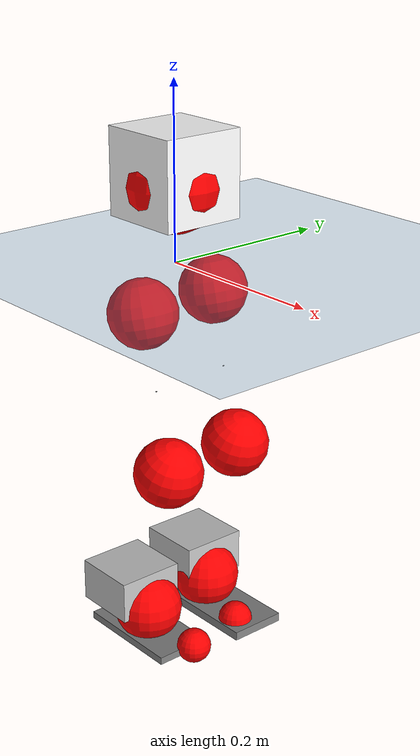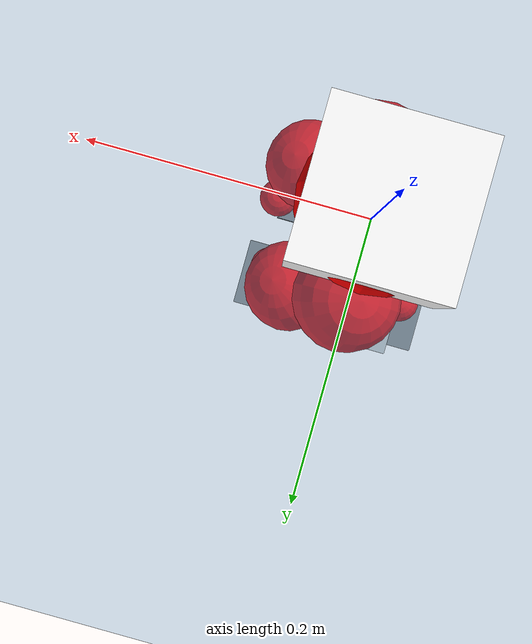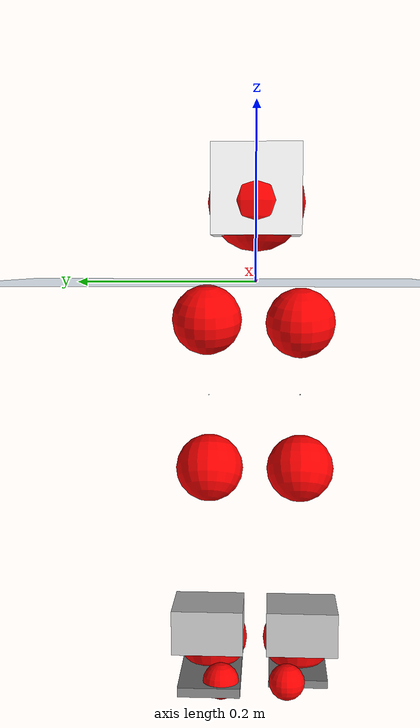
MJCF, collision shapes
<mujoco model="pi_12dof_release_v1">
  <compiler angle="radian" assetdir="assets" balanceinertia="true" inertiafromgeom="false"/>

  <option timestep="0.005" density="1.2" viscosity="2e-05"/>

  <size nkey="1"/>

  <visual>
    <quality shadowsize="8192"/>
    <map shadowclip="0.5"/>
  </visual>

  <default>
    <default class="/">
      <joint armature="0.01" damping="0.01" frictionloss="0.01"/>
      <geom contype="0" conaffinity="0" group="1" solref="-1000 -80"/>
      <site size="0.01 0.005 0.005" group="5"/>
      <general forcelimited="true" biastype="affine" gainprm="20" biasprm="0 -20 -0.5"/>
      <default class="foot">
        <geom size="0.0845 0.036 0.005" type="box" condim="6" group="4" priority="1" friction="0.9 0.2 0.2" solimp="0.015 1 0.005"/>
      </default>
      <default class="reward_collision_sphere">
        <geom group="5" rgba="1 0 0 1"/>
      </default>
    </default>
  </default>

  <asset>
    <texture type="skybox" colorspace="auto" name="//unnamed_texture_0" builtin="gradient" rgb1="0.95 0.95 0.95" rgb2="0.95 0.95 0.95" width="100" height="600"/>
    <texture type="2d" colorspace="auto" name="texplane" builtin="checker" rgb1="0.345 0.575 0.748" rgb2="0.345 0.575 0.748" markrgb="1 1 1" width="512" height="512"/>
    <material name="MatPlane" class="/" texture="texplane" texuniform="true" texrepeat="2 2" specular="0.9"/>
    <mesh name="baselink_1" class="/" file="baselink_1.STL"/>
    <mesh name="r_hip_pitch_link" class="/" file="r_hip_pitch_link.STL"/>
    <mesh name="r_hip_roll_link" class="/" file="r_hip_roll_link.STL"/>
    <mesh name="r_thigh_link" class="/" file="r_thigh_link.STL"/>
    <mesh name="r_calf_link" class="/" file="r_calf_link.STL"/>
    <mesh name="r_ankle_pitch_link" class="/" file="r_ankle_pitch_link.STL"/>
    <mesh name="r_ankle_roll_link" class="/" file="r_ankle_roll_link.STL"/>
    <mesh name="l_hip_pitch_link" class="/" file="l_hip_pitch_link.STL"/>
    <mesh name="l_hip_roll_link" class="/" file="l_hip_roll_link.STL"/>
    <mesh name="l_thigh_link" class="/" file="l_thigh_link.STL"/>
    <mesh name="l_calf_link" class="/" file="l_calf_link.STL"/>
    <mesh name="l_ankle_pitch_link" class="/" file="l_ankle_pitch_link.STL"/>
    <mesh name="l_ankle_roll_link" class="/" file="l_ankle_roll_link.STL"/>
  </asset>

  <worldbody>
    <geom name="floor" class="/" size="100 100 0.125" type="plane" group="0" material="MatPlane"/>
    <light name="toplight_shadow" class="/" pos="0 0 5" dir="0.0990148 0.0990148 -0.990148" type="directional" ambient="0.04 0.04 0.04" diffuse="0.55 0.55 0.55" specular="0.12 0.12 0.12"/>
    <light name="toplight_fill" class="/" pos="0 0 5" dir="0.0990148 0.0990148 -0.990148" type="directional" castshadow="false" ambient="0.04 0.04 0.04" diffuse="0.3 0.3 0.3" specular="0.08 0.08 0.08"/>
    <body name="trunk" pos="0.000159047 -0.000375128 -0.00155342" quat="1 -0.000150187 -0.000234222 4.4938e-05">
      <inertial pos="0.00171178 -1.36307e-05 0.0542194" quat="0.697281 -0.00224006 0.0037684 0.716785" mass="2.08383" diaginertia="0.0129202 0.000828165 0.0138246"/>
      <joint name="//unnamed_joint_0" type="free"/>
      <geom name="//unnamed_geom_1" class="/" type="mesh" density="0" rgba="1 1 1 1" mesh="baselink_1"/>
      <geom name="//unnamed_geom_2" class="/" size="0.049084 0.049084 0.049084" pos="0 0 0.101877" type="box" rgba="1 1 1 1"/>
      <geom name="//unnamed_geom_3" class="reward_collision_sphere" size="0.0539924" pos="0 0 0.089142"/>
      <site name="imu" class="/" pos="0.00945562 -0.00513264 -0.000946982" size="0.0098168"/>
      <camera name="track" class="/" pos="0 -1.24093 0" quat="0.707107 0.707107 0 0" mode="trackcom"/>
      <camera name="ego_camera" class="/" pos="0.0788337 0 0.229222" quat="-0.5 -0.5 0.5 0.5"/>
      <body name="r_hip_pitch_link" pos="0.003265 -0.0160881 -0.0428926" quat="0.992253 -0.00020901 -0.124226 -0.00111489">
        <inertial pos="0.000636151 -0.0375629 0.000386941" quat="-0.0258571 0.707808 -0.0203115 0.70564" mass="0.356038" diaginertia="0.000142204 9.20067e-06 0.000290158"/>
        <joint name="r_hip_pitch_joint" class="/" pos="0 0 0" axis="0.0102422 -0.999945 -0.00205773" range="-1.74558 1.26828" armature="0.00848002" damping="0.0175504" frictionloss="0.00849415"/>
        <geom name="//unnamed_geom_4" class="/" type="mesh" density="0" rgba="0.75294 0.75294 0.75294 1" mesh="r_hip_pitch_link"/>
        <geom name="//unnamed_geom_5" class="/" size="0.00049084 0.00049084 0.00049084" type="box" rgba="0.75294 0.75294 0.75294 1"/>
        <body name="r_hip_roll_link" pos="0.00200685 -0.0338066 -0.00202317" quat="1 -8.92703e-05 -0.000243234 5.09713e-05">
          <inertial pos="0.00157279 -0.000446065 -0.0781817" quat="0.698824 -0.0760767 -0.0894018 0.705595" mass="0.375666" diaginertia="0.000430496 2.55312e-05 0.000420171"/>
          <joint name="r_hip_roll_joint" class="/" pos="0 0 0" axis="-0.999956 0.00155941 0.00921897" range="-0.111926 0.54826" armature="0.00831794" damping="0.00251987" frictionloss="0.010428"/>
          <geom name="//unnamed_geom_6" class="/" type="mesh" density="0" rgba="0.75294 0.75294 0.75294 1" mesh="r_hip_roll_link"/>
          <geom name="//unnamed_geom_7" class="/" size="0.00049084 0.00049084 0.00049084" type="box" rgba="0.75294 0.75294 0.75294 1"/>
          <geom name="//unnamed_geom_8" class="reward_collision_sphere" size="0.0392672"/>
          <body name="r_thigh_link" pos="0.000862923 -0.000608548 -0.0865403" quat="1 -5.21831e-05 3.21756e-05 -0.000180592">
            <inertial pos="-0.00109624 -0.000515426 -0.0629462" quat="0.744684 0.667406 -0.00354372 0.00146931" mass="0.104384" diaginertia="0.00015498 8.71889e-06 0.000183431"/>
            <joint name="r_thigh_joint" class="/" pos="0 0 0" axis="-0.0107486 0.00302758 -0.999938" stiffness="0.00631046" range="-0.248748 0.638707" armature="0.00997001" damping="0.0089109" frictionloss="0.0104919"/>
            <geom name="//unnamed_geom_9" class="/" type="mesh" density="0" rgba="0.75294 0.75294 0.75294 1" mesh="r_thigh_link"/>
            <geom name="//unnamed_geom_10" class="/" size="0.00049084 0.00049084 0.00049084" type="box" rgba="0.75294 0.75294 0.75294 1"/>
            <body name="r_calf_link" pos="-0.00133702 -0.00141124 -0.0923789" quat="0.947637 0.000545856 0.31935 5.03795e-05">
              <inertial pos="-0.000505503 -0.000208152 -0.0892295" quat="0.99995 -0.00568266 -0.00105711 0.00821456" mass="0.766738" diaginertia="0.00447617 0.000339389 0.000602424"/>
              <joint name="r_calf_joint" class="/" pos="0 0 0" axis="0.00374933 -0.999989 0.00298306" range="-1.64879 0.695428" armature="0.00896735" damping="0.0164079" frictionloss="0.0085531"/>
              <geom name="//unnamed_geom_11" class="/" type="mesh" density="0" rgba="0.75294 0.75294 0.75294 1" mesh="r_calf_link"/>
              <geom name="//unnamed_geom_12" class="/" size="0.00049084 0.00049084 0.00049084" type="box" rgba="0.75294 0.75294 0.75294 1"/>
              <geom name="//unnamed_geom_13" class="reward_collision_sphere" size="0.0392672"/>
              <body name="r_ankle_pitch_link" pos="-0.00123702 -0.00137166 -0.180792" quat="0.980077 -0.000116561 -0.198615 -0.000284702">
                <inertial pos="0.00484579 0.00357597 -0.000365745" quat="0.00204395 0.706984 -0.00218015 0.707223" mass="0.166435" diaginertia="0.000390922 2.06299e-05 0.000409273"/>
                <joint name="r_ankle_pitch_joint" class="/" pos="0 0 0" axis="-0.00387458 -0.99992 -0.0120391" range="-1.34635 0.53857" armature="0.00888725" damping="0.00715954" frictionloss="0.00974319"/>
                <geom name="//unnamed_geom_14" class="/" type="mesh" density="0" rgba="0.75294 0.75294 0.75294 1" mesh="r_ankle_pitch_link"/>
                <geom name="//unnamed_geom_15" class="/" size="0.0382855 0.0392672 0.024542" type="box" rgba="0.75294 0.75294 0.75294 1"/>
                <body name="r_ankle_roll_link" pos="0.079626 0.00405987 0.00170647" quat="1 5.84049e-05 -9.14728e-06 5.1698e-05">
                  <inertial pos="-0.0245654 0.000689913 -0.0192413" quat="0.555185 0.438304 0.428296 0.562336" mass="0.480261" diaginertia="0.00147316 9.34747e-05 0.000937283"/>
                  <joint name="r_ankle_roll_joint" class="/" pos="0 0 0" axis="-0.999999 0.00010338 0.0012099" range="-0.187656 0.208647" armature="0.011222" damping="0.00651857" frictionloss="0.00985614"/>
                  <geom name="//unnamed_geom_16" class="/" type="mesh" density="0" rgba="0.75294 0.75294 0.75294 1" mesh="r_ankle_roll_link"/>
                  <geom name="//unnamed_geom_17" class="/" type="mesh" rgba="0.75294 0.75294 0.75294 1" mesh="r_ankle_roll_link"/>
                  <geom name="right_foot" class="foot" size="0.0650954 0.0324646 0.00431841" pos="-0.0536069 0 -0.0560321"/>
                  <geom name="//unnamed_geom_19" class="reward_collision_sphere" size="0.0392672" pos="-0.0525558 0 -0.0254692"/>
                  <geom name="//unnamed_geom_20" class="reward_collision_sphere" size="0.0196336" pos="0.0157667 0.0124093 -0.0509383"/>
                  <geom name="//unnamed_geom_21" class="reward_collision_sphere" size="0.0196336" pos="-0.126134 0.0124093 -0.0509383"/>
                  <site name="right_foot" class="foot" pos="-0.0536069 0 -0.0560321" size="0.0098168"/>
                </body>
              </body>
            </body>
          </body>
        </body>
      </body>
      <body name="l_hip_pitch_link" pos="0.00111738 0.0174324 -0.0399807" quat="0.992272 -0.000715511 -0.124083 -0.000267821">
        <inertial pos="0.00382212 0.0329432 -0.000875338" quat="-0.0445711 0.709579 0.0231509 0.702834" mass="0.372998" diaginertia="0.000158754 9.4616e-06 0.000337281"/>
        <joint name="l_hip_pitch_joint" class="/" pos="0 0 0" axis="-0.00457085 0.999989 0.00049557" range="-1.23936 1.79319" armature="0.00922695" damping="0.0188948" frictionloss="0.00902067"/>
        <geom name="//unnamed_geom_22" class="/" type="mesh" density="0" rgba="0.75294 0.75294 0.75294 1" mesh="l_hip_pitch_link"/>
        <geom name="//unnamed_geom_23" class="/" size="0.00049084 0.00049084 0.00049084" type="box" rgba="0.75294 0.75294 0.75294 1"/>
        <body name="l_hip_roll_link" pos="-0.0024438 0.0376435 -6.68581e-05" quat="1 -5.82415e-05 0.000273252 -6.76157e-05">
          <inertial pos="-0.0019046 0.000721834 -0.0796773" quat="0.699343 -0.0752974 -0.0780007 0.706516" mass="0.367264" diaginertia="0.000424511 2.47716e-05 0.000442748"/>
          <joint name="l_hip_roll_joint" class="/" pos="0 0 0" axis="-0.99997 -0.000514195 0.00778844" stiffness="0.0056401" range="-0.535214 0.15277" armature="0.0103697" damping="0" frictionloss="0.0099101"/>
          <geom name="//unnamed_geom_24" class="/" type="mesh" density="0" rgba="0.75294 0.75294 0.75294 1" mesh="l_hip_roll_link"/>
          <geom name="//unnamed_geom_25" class="/" size="0.00049084 0.00049084 0.00049084" type="box" rgba="0.75294 0.75294 0.75294 1"/>
          <geom name="//unnamed_geom_26" class="reward_collision_sphere" size="0.0392672"/>
          <body name="l_thigh_link" pos="-0.00239182 -0.00117312 -0.089111" quat="0.999999 -0.000585783 0.00043579 -0.00107172">
            <inertial pos="0.000540688 -0.00198783 -0.0599163" quat="0.676552 0.736281 0.0092948 0.00900627" mass="0.106311" diaginertia="0.000158856 8.73647e-06 0.000197609"/>
            <joint name="l_thigh_joint" class="/" pos="0 0 0" axis="-0.0105581 -0.00911712 -0.999903" range="-0.645871 0.33669" armature="0.0110291" damping="0.00669457" frictionloss="0.0107832"/>
            <geom name="//unnamed_geom_27" class="/" type="mesh" density="0" rgba="0.75294 0.75294 0.75294 1" mesh="l_thigh_link"/>
            <geom name="//unnamed_geom_28" class="/" size="0.00049084 0.00049084 0.00049084" type="box" rgba="0.75294 0.75294 0.75294 1"/>
            <body name="l_calf_link" pos="-0.0017277 0.00045979 -0.0907809" quat="0.947668 -0.000180585 0.319256 0.000333385">
              <inertial pos="0.00108053 0.00245184 -0.0888669" quat="0.999878 0.0128574 0.00714901 0.00521817" mass="0.743786" diaginertia="0.00434621 0.000311951 0.000576102"/>
              <joint name="l_calf_joint" class="/" pos="0 0 0" axis="0.00804745 0.999952 0.00556724" range="-0.596938 1.70502" armature="0.0099015" damping="0.00922509" frictionloss="0.00995816"/>
              <geom name="//unnamed_geom_29" class="/" type="mesh" density="0" rgba="0.75294 0.75294 0.75294 1" mesh="l_calf_link"/>
              <geom name="//unnamed_geom_30" class="/" size="0.00049084 0.00049084 0.00049084" type="box" rgba="0.75294 0.75294 0.75294 1"/>
              <geom name="//unnamed_geom_31" class="reward_collision_sphere" size="0.0392672"/>
              <body name="l_ankle_pitch_link" pos="-0.00066001 -0.0027186 -0.17934" quat="0.980099 -6.87382e-05 -0.198511 0.000117067">
                <inertial pos="0.00650984 -0.00312513 0.00113254" quat="-0.00159746 0.706959 0.00290161 0.707247" mass="0.174588" diaginertia="0.000405559 2.07807e-05 0.000423461"/>
                <joint name="l_ankle_pitch_joint" class="/" pos="0 0 0" axis="0.000760547 0.999985 -0.00548665" range="-0.494463 1.30268" armature="0.00977541" damping="0" frictionloss="0.00847263"/>
                <geom name="//unnamed_geom_32" class="/" type="mesh" density="0" rgba="0.75294 0.75294 0.75294 1" mesh="l_ankle_pitch_link"/>
                <geom name="//unnamed_geom_33" class="/" size="0.0382855 0.0392672 0.024542" type="box" rgba="0.75294 0.75294 0.75294 1"/>
                <body name="l_ankle_roll_link" pos="0.0792099 -0.0031698 0.00202936" quat="0.999999 -0.000900761 -0.000466852 0.000600729">
                  <inertial pos="-0.0285015 -0.00100677 -0.0190147" quat="0.560519 0.431537 0.433639 0.558167" mass="0.494444" diaginertia="0.00140871 9.53034e-05 0.000938897"/>
                  <joint name="l_ankle_roll_joint" class="/" pos="0 0 0" axis="-1 -0.000131987 0.000239657" range="-0.154933 0.154704" armature="0.008523" damping="0.0103786" frictionloss="0.0104976"/>
                  <geom name="//unnamed_geom_34" class="/" type="mesh" density="0" rgba="0.75294 0.75294 0.75294 1" mesh="l_ankle_roll_link"/>
                  <geom name="//unnamed_geom_35" class="/" type="mesh" rgba="0.75294 0.75294 0.75294 1" mesh="l_ankle_roll_link"/>
                  <geom name="left_foot" class="foot" size="0.0958023 0.0336487 0.00504414" pos="-0.0536069 0 -0.0560321"/>
                  <geom name="//unnamed_geom_37" class="reward_collision_sphere" size="0.0392672" pos="-0.0525558 0 -0.0254692"/>
                  <geom name="//unnamed_geom_38" class="reward_collision_sphere" size="0.0196336" pos="0.0157667 -0.0124093 -0.0509383"/>
                  <geom name="//unnamed_geom_39" class="reward_collision_sphere" size="0.0196336" pos="-0.126134 -0.0124093 -0.0509383"/>
                  <site name="left_foot" class="foot" pos="-0.0536069 0 -0.0560321" size="0.0098168"/>
                </body>
              </body>
            </body>
          </body>
        </body>
      </body>
    </body>
  </worldbody>

  <contact>
    <pair class="/" geom1="floor" geom2="right_foot" name="//unnamed_contact_1"/>
    <pair class="/" geom1="floor" geom2="left_foot" name="//unnamed_contact_0"/>
  </contact>

  <actuator>
    <general name="r_hip_pitch_joint" class="/" joint="r_hip_pitch_joint" forcerange="-22.7747 22.7747" gainprm="19.2329" biasprm="0 -19.2329 -0.489523"/>
    <general name="r_hip_roll_joint" class="/" joint="r_hip_roll_joint" forcerange="-20.3596 20.3596" gainprm="19.2329" biasprm="0 -19.2329 -0.489523"/>
    <general name="r_thigh_joint" class="/" joint="r_thigh_joint" forcerange="-21.5188 21.5188" gainprm="19.2329" biasprm="0 -19.2329 -0.489523"/>
    <general name="r_calf_joint" class="/" joint="r_calf_joint" forcerange="-21.3889 21.3889" gainprm="19.2329" biasprm="0 -19.2329 -0.489523"/>
    <general name="r_ankle_pitch_joint" class="/" joint="r_ankle_pitch_joint" forcerange="-20.2085 20.2085" gainprm="19.2329" biasprm="0 -19.2329 -0.489523"/>
    <general name="r_ankle_roll_joint" class="/" joint="r_ankle_roll_joint" forcerange="-20.3212 20.3212" gainprm="19.2329" biasprm="0 -19.2329 -0.489523"/>
    <general name="l_hip_pitch_joint" class="/" joint="l_hip_pitch_joint" forcerange="-19.7445 19.7445" gainprm="19.2329" biasprm="0 -19.2329 -0.489523"/>
    <general name="l_hip_roll_joint" class="/" joint="l_hip_roll_joint" forcerange="-18.88 18.88" gainprm="19.2329" biasprm="0 -19.2329 -0.489523"/>
    <general name="l_thigh_joint" class="/" joint="l_thigh_joint" forcerange="-18.8786 18.8786" gainprm="19.2329" biasprm="0 -19.2329 -0.489523"/>
    <general name="l_calf_joint" class="/" joint="l_calf_joint" forcerange="-19.0431 19.0431" gainprm="19.2329" biasprm="0 -19.2329 -0.489523"/>
    <general name="l_ankle_pitch_joint" class="/" joint="l_ankle_pitch_joint" forcerange="-22.6341 22.6341" gainprm="19.2329" biasprm="0 -19.2329 -0.489523"/>
    <general name="l_ankle_roll_joint" class="/" joint="l_ankle_roll_joint" forcerange="-20.6491 20.6491" gainprm="19.2329" biasprm="0 -19.2329 -0.489523"/>
  </actuator>

  <sensor>
    <gyro site="imu" name="imu_angular_velocity"/>
    <velocimeter site="imu" name="imu_linear_velocity"/>
    <framelinvel objtype="site" objname="left_foot" name="left_foot_global_linear_velocity"/>
    <framelinvel objtype="site" objname="right_foot" name="right_foot_global_linear_velocity"/>
  </sensor>

  <keyframe>
    <key name="home" qpos="0 0 0.291 1 0 0 0 0.4 0 0 -0.8 0.4 0 -0.4 0 0 0.8 -0.4 0"/>
  </keyframe>
</mujoco>
